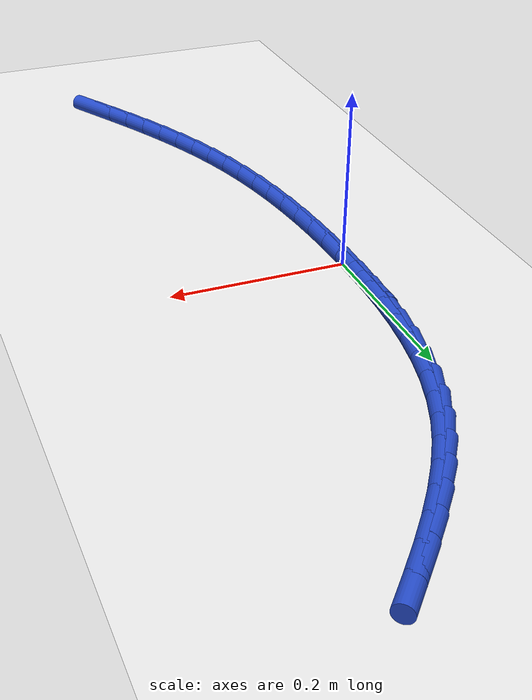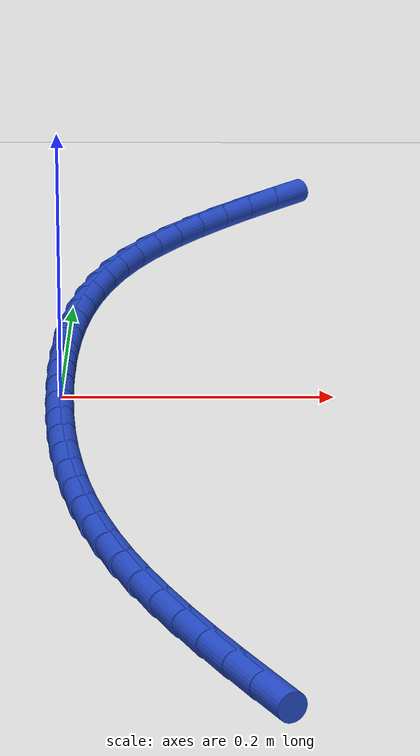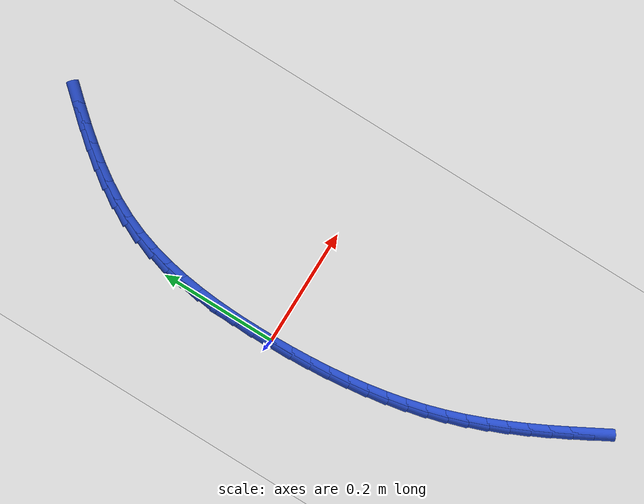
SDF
<sdf version="1.6">
 <world name="default">
  <model name="ground_plane">
   <static>1</static>
   <link name="link">
    <collision name="collision">
     <geometry><plane><normal>0 0 1</normal><size>100 100</size></plane></geometry>
     <surface><friction><ode><mu>100</mu><mu2>50</mu2></ode></friction></surface>
    </collision>
    <visual name="visual">
     <cast_shadows>0</cast_shadows>
     <geometry><plane><normal>0 0 1</normal><size>100 100</size></plane></geometry>
     <material>
      <script><uri>file://media/materials/scripts/gazebo.material</uri><name>Gazebo/WhiteGlow</name></script>
     </material>
    </visual>
   </link>
  </model>
  <model name="line">
   <link name="link_0">
    <pose>3.469446951953614e-18 -6.938893903907228e-18 0.01 0 1.57 -1.5600007754396892</pose>
    <collision name="collision">
     <geometry><cylinder><radius>0.01</radius><length>0.08</length></cylinder></geometry>
    </collision>
    <visual name="visual">
     <material>
      <script><name>Gazebo/Blue</name><uri>file://media/materials/scripts/gazebo.material</uri></script>
     </material>
     <geometry><cylinder><radius>0.01</radius><length>0.08</length></cylinder></geometry>
    </visual>
   </link>
   <link name="link_1">
    <pose>-0.0003693970486968015 0.03421619573689655 0.01 0 1.57 1.5554484758334015</pose>
    <collision name="collision">
     <geometry><cylinder><radius>0.01</radius><length>0.08</length></cylinder></geometry>
    </collision>
    <visual name="visual">
     <material>
      <script><name>Gazebo/Blue</name><uri>file://media/materials/scripts/gazebo.material</uri></script>
     </material>
     <geometry><cylinder><radius>0.01</radius><length>0.08</length></cylinder></geometry>
    </visual>
   </link>
   <link name="link_2">
    <pose>0.00015649383802368924 0.0684782950397433 0.01 0 1.57 1.5236202056912242</pose>
    <collision name="collision">
     <geometry><cylinder><radius>0.01</radius><length>0.08</length></cylinder></geometry>
    </collision>
    <visual name="visual">
     <material>
      <script><name>Gazebo/Blue</name><uri>file://media/materials/scripts/gazebo.material</uri></script>
     </material>
     <geometry><cylinder><radius>0.01</radius><length>0.08</length></cylinder></geometry>
    </visual>
   </link>
   <link name="link_3">
    <pose>0.0017685057791543288 0.10262302409657 0.01 0 1.57 1.4856917676888064</pose>
    <collision name="collision">
     <geometry><cylinder><radius>0.01</radius><length>0.08</length></cylinder></geometry>
    </collision>
    <visual name="visual">
     <material>
      <script><name>Gazebo/Blue</name><uri>file://media/materials/scripts/gazebo.material</uri></script>
     </material>
     <geometry><cylinder><radius>0.01</radius><length>0.08</length></cylinder></geometry>
    </visual>
   </link>
   <link name="link_4">
    <pose>0.004657471893687967 0.13648710909540637 0.01 0 1.57 1.4411643673800123</pose>
    <collision name="collision">
     <geometry><cylinder><radius>0.01</radius><length>0.08</length></cylinder></geometry>
    </collision>
    <visual name="visual">
     <material>
      <script><name>Gazebo/Blue</name><uri>file://media/materials/scripts/gazebo.material</uri></script>
     </material>
     <geometry><cylinder><radius>0.01</radius><length>0.08</length></cylinder></geometry>
    </visual>
   </link>
   <link name="link_5">
    <pose>0.009014225300617455 0.16990727622428223 0.01 0 1.57 1.3894865284816937</pose>
    <collision name="collision">
     <geometry><cylinder><radius>0.01</radius><length>0.08</length></cylinder></geometry>
    </collision>
    <visual name="visual">
     <material>
      <script><name>Gazebo/Blue</name><uri>file://media/materials/scripts/gazebo.material</uri></script>
     </material>
     <geometry><cylinder><radius>0.01</radius><length>0.08</length></cylinder></geometry>
    </visual>
   </link>
   <link name="link_6">
    <pose>0.015029599118935645 0.20272025167122742 0.01 0 1.57 1.330104777681257</pose>
    <collision name="collision">
     <geometry><cylinder><radius>0.01</radius><length>0.08</length></cylinder></geometry>
    </collision>
    <visual name="visual">
     <material>
      <script><name>Gazebo/Blue</name><uri>file://media/materials/scripts/gazebo.material</uri></script>
     </material>
     <geometry><cylinder><radius>0.01</radius><length>0.08</length></cylinder></geometry>
    </visual>
   </link>
   <link name="link_7">
    <pose>0.022894426467635395 0.2347627616242717 0.01 0 1.57 1.262543057963074</pose>
    <collision name="collision">
     <geometry><cylinder><radius>0.01</radius><length>0.08</length></cylinder></geometry>
    </collision>
    <visual name="visual">
     <material>
      <script><name>Gazebo/Blue</name><uri>file://media/materials/scripts/gazebo.material</uri></script>
     </material>
     <geometry><cylinder><radius>0.01</radius><length>0.08</length></cylinder></geometry>
    </visual>
   </link>
   <link name="link_8">
    <pose>0.03279954046570955 0.26587153227144483 0.01 0 1.57 1.1865176995141657</pose>
    <collision name="collision">
     <geometry><cylinder><radius>0.01</radius><length>0.08</length></cylinder></geometry>
    </collision>
    <visual name="visual">
     <material>
      <script><name>Gazebo/Blue</name><uri>file://media/materials/scripts/gazebo.material</uri></script>
     </material>
     <geometry><cylinder><radius>0.01</radius><length>0.08</length></cylinder></geometry>
    </visual>
   </link>
   <link name="link_9">
    <pose>0.04493576959993535 0.295883292981483 0.01 0 1.57 1.1055190774696992</pose>
    <collision name="collision">
     <geometry><cylinder><radius>0.01</radius><length>0.08</length></cylinder></geometry>
    </collision>
    <visual name="visual">
     <material>
      <script><name>Gazebo/Blue</name><uri>file://media/materials/scripts/gazebo.material</uri></script>
     </material>
     <geometry><cylinder><radius>0.01</radius><length>0.08</length></cylinder></geometry>
    </visual>
   </link>
   <link name="link_10">
    <pose>0.05940186649474283 0.32469799692529017 0.01 0 1.57 1.0324860794601485</pose>
    <collision name="collision">
     <geometry><cylinder><radius>0.01</radius><length>0.08</length></cylinder></geometry>
    </collision>
    <visual name="visual">
     <material>
      <script><name>Gazebo/Blue</name><uri>file://media/materials/scripts/gazebo.material</uri></script>
     </material>
     <geometry><cylinder><radius>0.01</radius><length>0.08</length></cylinder></geometry>
    </visual>
   </link>
   <link name="link_11">
    <pose>0.07596822443103515 0.352441064900637 0.01 0 1.57 0.970878481248477</pose>
    <collision name="collision">
     <geometry><cylinder><radius>0.01</radius><length>0.08</length></cylinder></geometry>
    </collision>
    <visual name="visual">
     <material>
      <script><name>Gazebo/Blue</name><uri>file://media/materials/scripts/gazebo.material</uri></script>
     </material>
     <geometry><cylinder><radius>0.01</radius><length>0.08</length></cylinder></geometry>
    </visual>
   </link>
   <link name="link_12">
    <pose>0.09433207065185885 0.3792881570946944 0.01 0 1.57 0.9208722245230099</pose>
    <collision name="collision">
     <geometry><cylinder><radius>0.01</radius><length>0.08</length></cylinder></geometry>
    </collision>
    <visual name="visual">
     <material>
      <script><name>Gazebo/Blue</name><uri>file://media/materials/scripts/gazebo.material</uri></script>
     </material>
     <geometry><cylinder><radius>0.01</radius><length>0.08</length></cylinder></geometry>
    </visual>
   </link>
   <link name="link_13">
    <pose>0.11419063240026037 0.4054149336946331 0.01 0 1.57 0.8822709498419058</pose>
    <collision name="collision">
     <geometry><cylinder><radius>0.01</radius><length>0.08</length></cylinder></geometry>
    </collision>
    <visual name="visual">
     <material>
      <script><name>Gazebo/Blue</name><uri>file://media/materials/scripts/gazebo.material</uri></script>
     </material>
     <geometry><cylinder><radius>0.01</radius><length>0.08</length></cylinder></geometry>
    </visual>
   </link>
   <link name="link_14">
    <pose>0.1352411369192864 0.4309970548876248 0.01 0 1.57 0.8547091655558868</pose>
    <collision name="collision">
     <geometry><cylinder><radius>0.01</radius><length>0.08</length></cylinder></geometry>
    </collision>
    <visual name="visual">
     <material>
      <script><name>Gazebo/Blue</name><uri>file://media/materials/scripts/gazebo.material</uri></script>
     </material>
     <geometry><cylinder><radius>0.01</radius><length>0.08</length></cylinder></geometry>
    </visual>
   </link>
   <link name="link_15">
    <pose>0.15718081145198323 0.45621018086084 0.01 0 1.57 0.8377988591644435</pose>
    <collision name="collision">
     <geometry><cylinder><radius>0.01</radius><length>0.08</length></cylinder></geometry>
    </collision>
    <visual name="visual">
     <material>
      <script><name>Gazebo/Blue</name><uri>file://media/materials/scripts/gazebo.material</uri></script>
     </material>
     <geometry><cylinder><radius>0.01</radius><length>0.08</length></cylinder></geometry>
    </visual>
   </link>
   <link name="link_194">
    <pose>0.14208777078181964 -0.5071395946250706 0.01 0 1.57 -1.0705359925335367</pose>
    <collision name="collision">
     <geometry><cylinder><radius>0.01</radius><length>0.08</length></cylinder></geometry>
    </collision>
    <visual name="visual">
     <material>
      <script><name>Gazebo/Blue</name><uri>file://media/materials/scripts/gazebo.material</uri></script>
     </material>
     <geometry><cylinder><radius>0.01</radius><length>0.08</length></cylinder></geometry>
    </visual>
   </link>
   <link name="link_195">
    <pose>0.12600918476795644 -0.47772614279860426 0.01 0 1.57 -1.0855451600268018</pose>
    <collision name="collision">
     <geometry><cylinder><radius>0.01</radius><length>0.08</length></cylinder></geometry>
    </collision>
    <visual name="visual">
     <material>
      <script><name>Gazebo/Blue</name><uri>file://media/materials/scripts/gazebo.material</uri></script>
     </material>
     <geometry><cylinder><radius>0.01</radius><length>0.08</length></cylinder></geometry>
    </visual>
   </link>
   <link name="link_196">
    <pose>0.11039979947048294 -0.4481238707381454 0.01 0 1.57 -1.105256677008329</pose>
    <collision name="collision">
     <geometry><cylinder><radius>0.01</radius><length>0.08</length></cylinder></geometry>
    </collision>
    <visual name="visual">
     <material>
      <script><name>Gazebo/Blue</name><uri>file://media/materials/scripts/gazebo.material</uri></script>
     </material>
     <geometry><cylinder><radius>0.01</radius><length>0.08</length></cylinder></geometry>
    </visual>
   </link>
   <link name="link_197">
    <pose>0.09541471875682728 -0.4182949369817711 0.01 0 1.57 -1.1297558996170771</pose>
    <collision name="collision">
     <geometry><cylinder><radius>0.01</radius><length>0.08</length></cylinder></geometry>
    </collision>
    <visual name="visual">
     <material>
      <script><name>Gazebo/Blue</name><uri>file://media/materials/scripts/gazebo.material</uri></script>
     </material>
     <geometry><cylinder><radius>0.01</radius><length>0.08</length></cylinder></geometry>
    </visual>
   </link>
   <link name="link_198">
    <pose>0.08120904649441642 -0.3882015000675566 0.01 0 1.57 -1.159131549428601</pose>
    <collision name="collision">
     <geometry><cylinder><radius>0.01</radius><length>0.08</length></cylinder></geometry>
    </collision>
    <visual name="visual">
     <material>
      <script><name>Gazebo/Blue</name><uri>file://media/materials/scripts/gazebo.material</uri></script>
     </material>
     <geometry><cylinder><radius>0.01</radius><length>0.08</length></cylinder></geometry>
    </visual>
   </link>
   <link name="link_199">
    <pose>0.06793788655067766 -0.35780571853357784 0.01 0 1.57 -1.1934589301548124</pose>
    <collision name="collision">
     <geometry><cylinder><radius>0.01</radius><length>0.08</length></cylinder></geometry>
    </collision>
    <visual name="visual">
     <material>
      <script><name>Gazebo/Blue</name><uri>file://media/materials/scripts/gazebo.material</uri></script>
     </material>
     <geometry><cylinder><radius>0.01</radius><length>0.08</length></cylinder></geometry>
    </visual>
   </link>
   <link name="link_200">
    <pose>0.05575634279303835 -0.32706975091791063 0.01 0 1.57 -1.2327785526068438</pose>
    <collision name="collision">
     <geometry><cylinder><radius>0.01</radius><length>0.08</length></cylinder></geometry>
    </collision>
    <visual name="visual">
     <material>
      <script><name>Gazebo/Blue</name><uri>file://media/materials/scripts/gazebo.material</uri></script>
     </material>
     <geometry><cylinder><radius>0.01</radius><length>0.08</length></cylinder></geometry>
    </visual>
   </link>
   <link name="link_201">
    <pose>0.04481951908892581 -0.2959557557586309 0.01 0 1.57 -1.2759856934179987</pose>
    <collision name="collision">
     <geometry><cylinder><radius>0.01</radius><length>0.08</length></cylinder></geometry>
    </collision>
    <visual name="visual">
     <material>
      <script><name>Gazebo/Blue</name><uri>file://media/materials/scripts/gazebo.material</uri></script>
     </material>
     <geometry><cylinder><radius>0.01</radius><length>0.08</length></cylinder></geometry>
    </visual>
   </link>
   <link name="link_202">
    <pose>0.03524792876610938 -0.264434943450956 0.01 0 1.57 -1.3181026085821543</pose>
    <collision name="collision">
     <geometry><cylinder><radius>0.01</radius><length>0.08</length></cylinder></geometry>
    </collision>
    <visual name="visual">
     <material>
      <script><name>Gazebo/Blue</name><uri>file://media/materials/scripts/gazebo.material</uri></script>
     </material>
     <geometry><cylinder><radius>0.01</radius><length>0.08</length></cylinder></geometry>
    </visual>
   </link>
   <link name="link_203">
    <pose>0.027006847459749257 -0.2325191479082833 0.01 0 1.57 -1.357629137026628</pose>
    <collision name="collision">
     <geometry><cylinder><radius>0.01</radius><length>0.08</length></cylinder></geometry>
    </collision>
    <visual name="visual">
     <material>
      <script><name>Gazebo/Blue</name><uri>file://media/materials/scripts/gazebo.material</uri></script>
     </material>
     <geometry><cylinder><radius>0.01</radius><length>0.08</length></cylinder></geometry>
    </visual>
   </link>
   <link name="link_204">
    <pose>0.02001802031105794 -0.20023159436130006 0.01 0 1.57 -1.3944747796539474</pose>
    <collision name="collision">
     <geometry><cylinder><radius>0.01</radius><length>0.08</length></cylinder></geometry>
    </collision>
    <visual name="visual">
     <material>
      <script><name>Gazebo/Blue</name><uri>file://media/materials/scripts/gazebo.material</uri></script>
     </material>
     <geometry><cylinder><radius>0.01</radius><length>0.08</length></cylinder></geometry>
    </visual>
   </link>
   <link name="link_205">
    <pose>0.014203190271286232 -0.16759550861377623 0.01 0 1.57 -1.4285924636620293</pose>
    <collision name="collision">
     <geometry><cylinder><radius>0.01</radius><length>0.08</length></cylinder></geometry>
    </collision>
    <visual name="visual">
     <material>
      <script><name>Gazebo/Blue</name><uri>file://media/materials/scripts/gazebo.material</uri></script>
     </material>
     <geometry><cylinder><radius>0.01</radius><length>0.08</length></cylinder></geometry>
    </visual>
   </link>
   <link name="link_206">
    <pose>0.009484100291684932 -0.13463411646948184 0.01 0 1.57 -1.459970862329355</pose>
    <collision name="collision">
     <geometry><cylinder><radius>0.01</radius><length>0.08</length></cylinder></geometry>
    </collision>
    <visual name="visual">
     <material>
      <script><name>Gazebo/Blue</name><uri>file://media/materials/scripts/gazebo.material</uri></script>
     </material>
     <geometry><cylinder><radius>0.01</radius><length>0.08</length></cylinder></geometry>
    </visual>
   </link>
   <link name="link_207">
    <pose>0.0057824933235048545 -0.10137064373218702 0.01 0 1.57 -1.4886266818338156</pose>
    <collision name="collision">
     <geometry><cylinder><radius>0.01</radius><length>0.08</length></cylinder></geometry>
    </collision>
    <visual name="visual">
     <material>
      <script><name>Gazebo/Blue</name><uri>file://media/materials/scripts/gazebo.material</uri></script>
     </material>
     <geometry><cylinder><radius>0.01</radius><length>0.08</length></cylinder></geometry>
    </visual>
   </link>
   <link name="link_208">
    <pose>0.0030201123179967983 -0.06782831620566168 0.01 0 1.57 -1.5145973695712822</pose>
    <collision name="collision">
     <geometry><cylinder><radius>0.01</radius><length>0.08</length></cylinder></geometry>
    </collision>
    <visual name="visual">
     <material>
      <script><name>Gazebo/Blue</name><uri>file://media/materials/scripts/gazebo.material</uri></script>
     </material>
     <geometry><cylinder><radius>0.01</radius><length>0.08</length></cylinder></geometry>
    </visual>
   </link>
   <link name="link_209">
    <pose>0.0011187002264115425 -0.03403035969367517 0.01 0 1.57 -1.5379345670467708</pose>
    <collision name="collision">
     <geometry><cylinder><radius>0.01</radius><length>0.08</length></cylinder></geometry>
    </collision>
    <visual name="visual">
     <material>
      <script><name>Gazebo/Blue</name><uri>file://media/materials/scripts/gazebo.material</uri></script>
     </material>
     <geometry><cylinder><radius>0.01</radius><length>0.08</length></cylinder></geometry>
    </visual>
   </link>
   <link name="link_210">
    <pose>-9.974659986866641e-18 1.8041124150158794e-16 0.01 0 1.57 -1.5586984646214084</pose>
    <collision name="collision">
     <geometry><cylinder><radius>0.01</radius><length>0.08</length></cylinder></geometry>
    </collision>
    <visual name="visual">
     <material>
      <script><name>Gazebo/Blue</name><uri>file://media/materials/scripts/gazebo.material</uri></script>
     </material>
     <geometry><cylinder><radius>0.01</radius><length>0.08</length></cylinder></geometry>
    </visual>
   </link>
   <link name="link_211">
    <pose>-0.00041424540998715375 0.03423953707159668 0.01 0 1.57 1.5646395607489563</pose>
    <collision name="collision">
     <geometry><cylinder><radius>0.01</radius><length>0.08</length></cylinder></geometry>
    </collision>
    <visual name="visual">
     <material>
      <script><name>Gazebo/Blue</name><uri>file://media/materials/scripts/gazebo.material</uri></script>
     </material>
     <geometry><cylinder><radius>0.01</radius><length>0.08</length></cylinder></geometry>
    </visual>
   </link>
   <link name="link_212">
    <pose>-0.00020229305229902805 0.06866502571734513 0.01 0 1.57 -1.5678502495899946</pose>
    <collision name="collision">
     <geometry><cylinder><radius>0.01</radius><length>0.08</length></cylinder></geometry>
    </collision>
    <visual name="visual">
     <material>
      <script><name>Gazebo/Blue</name><uri>file://media/materials/scripts/gazebo.material</uri></script>
     </material>
     <geometry><cylinder><radius>0.01</radius><length>0.08</length></cylinder></geometry>
    </visual>
   </link>
  </model>
 </world>
</sdf>
